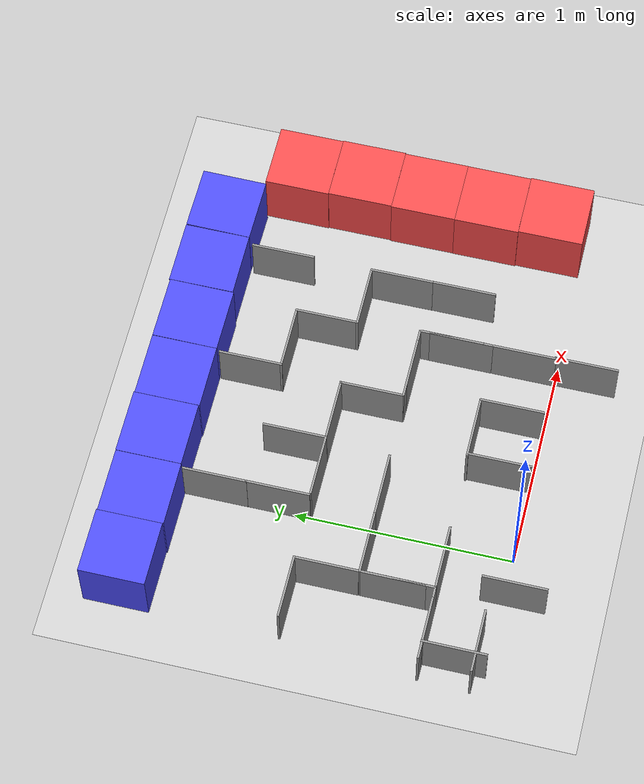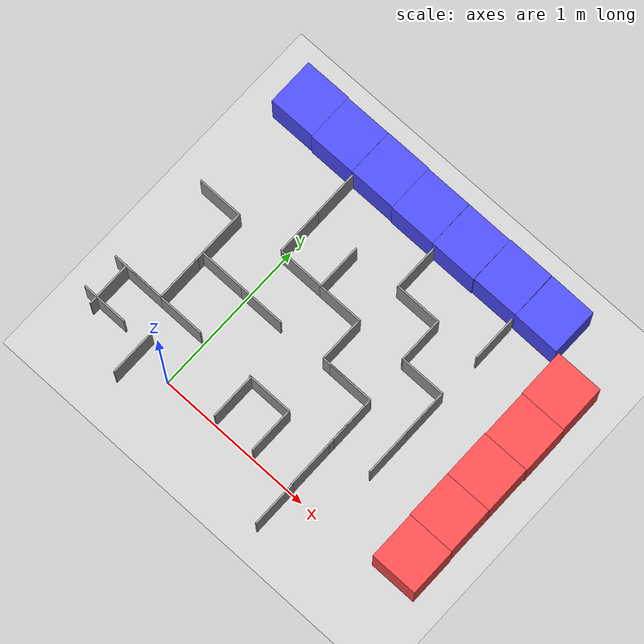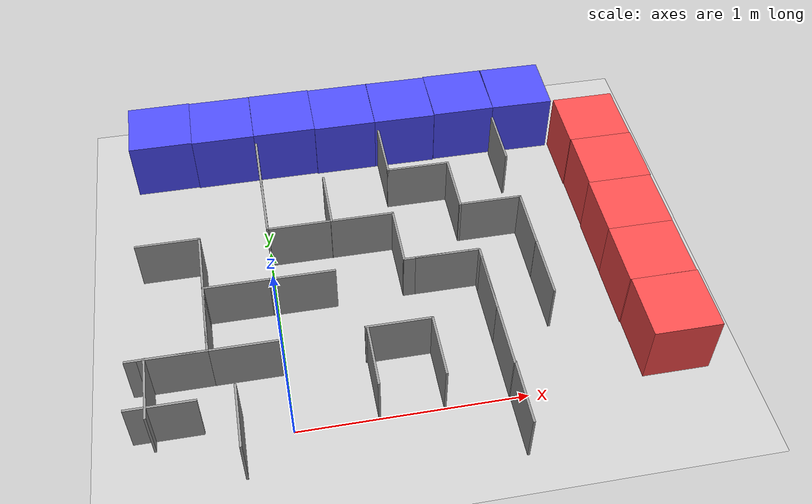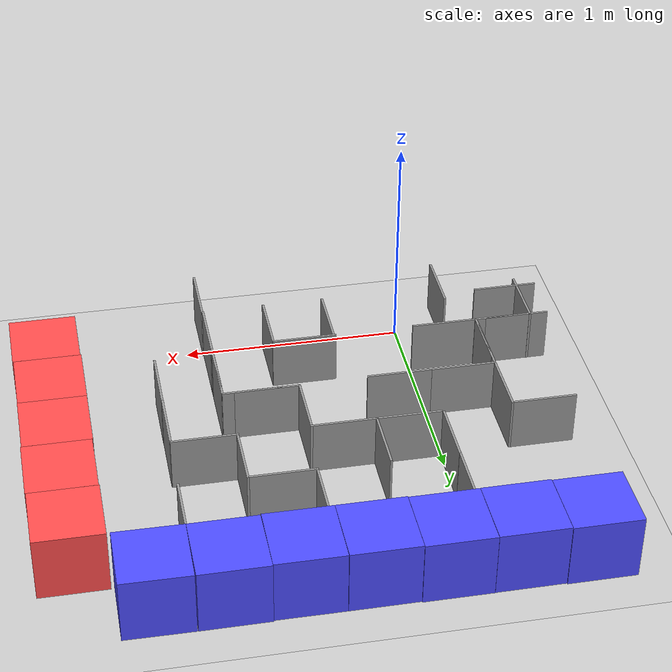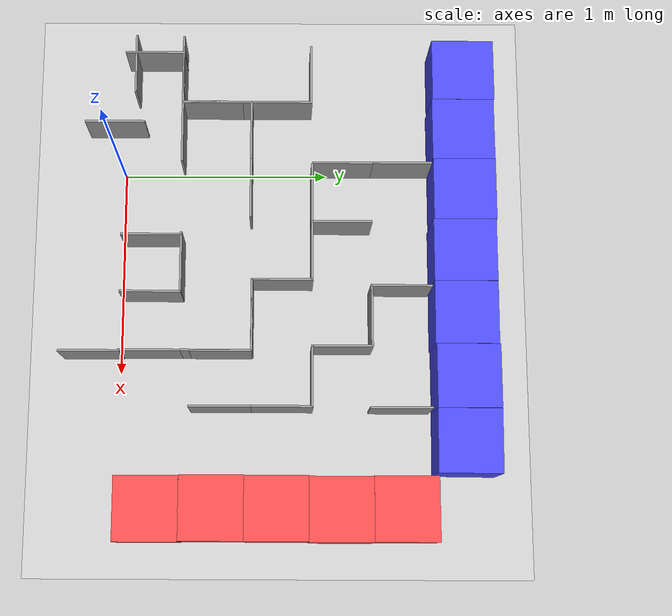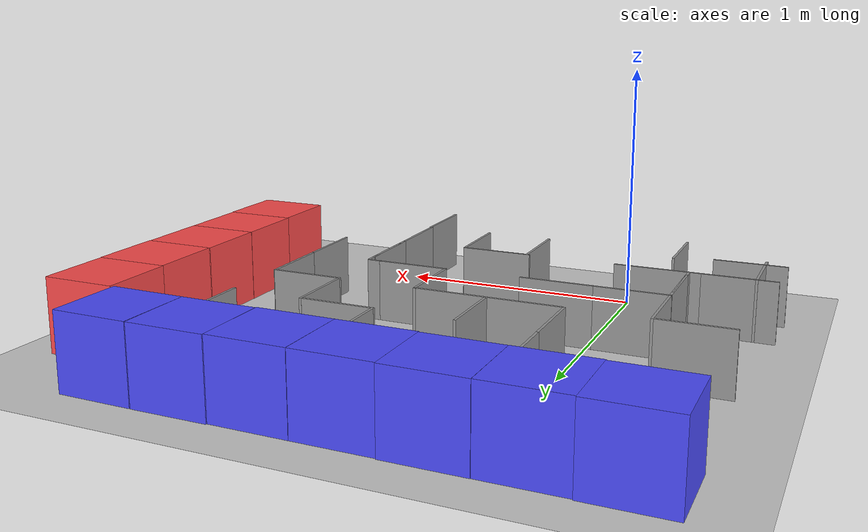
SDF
<sdf version="1.6">
 <world name="default">
  <model name="ground_plane">
   <static>1</static>
   <link name="link">
    <collision name="collision">
     <geometry><plane><normal>0 0 1</normal><size>100 100</size></plane></geometry>
     <surface><friction><ode><mu>100</mu><mu2>50</mu2></ode></friction></surface>
    </collision>
    <visual name="visual">
     <cast_shadows>0</cast_shadows>
     <geometry><plane><normal>0 0 1</normal><size>100 100</size></plane></geometry>
     <material>
      <script><uri>file://media/materials/scripts/gazebo.material</uri><name>Gazebo/Grey</name></script>
     </material>
    </visual>
   </link>
  </model>
  <model name="Box_Red">
   <link name="link_0">
    <inertial>
     <mass>1</mass>
     <inertia>
      <ixx>0.166667</ixx>
      <ixy>0</ixy>
      <ixz>0</ixz>
      <iyy>0.166667</iyy>
      <iyz>0</iyz>
      <izz>0.166667</izz>
     </inertia>
    </inertial>
    <visual name="visual">
     <geometry><box><size>0.3 0.3 0.3</size></box></geometry>
     <material>
      <lighting>1</lighting>
      <script><uri>file://media/materials/scripts/gazebo.material</uri><name>Gazebo/Grey</name></script>
      <ambient>1 0.3 0.3 1</ambient>
      <diffuse>0.7 0.7 0.7 1</diffuse>
      <specular>0.01 0.01 0.01 1</specular>
      <emissive>0 0 0 1</emissive>
      <shader type="vertex"><normal_map>__default__</normal_map></shader>
     </material>
    </visual>
    <collision name="collision">
     <geometry><box><size>0.3 0.3 0.3</size></box></geometry>
     <surface>
      <friction>
       <ode><mu>1</mu><mu2>1</mu2><fdir1>0 0 0</fdir1><slip1>0</slip1><slip2>0</slip2></ode>
       <torsional>
        <coefficient>1</coefficient>
        <patch_radius>0</patch_radius>
        <surface_radius>0</surface_radius>
        <use_patch_radius>1</use_patch_radius>
        <ode><slip>0</slip></ode>
       </torsional>
      </friction>
      <bounce><restitution_coefficient>0</restitution_coefficient><threshold>1e+06</threshold></bounce>
      <contact>
       <collide_without_contact>0</collide_without_contact>
       <collide_without_contact_bitmask>1</collide_without_contact_bitmask>
       <collide_bitmask>1</collide_bitmask>
       <ode>
        <soft_cfm>0</soft_cfm>
        <soft_erp>0.2</soft_erp>
        <kp>1e+13</kp>
        <kd>1</kd>
        <max_vel>0.01</max_vel>
        <min_depth>0</min_depth>
       </ode>
       <bullet>
        <split_impulse>1</split_impulse>
        <split_impulse_penetration_threshold>-0.01</split_impulse_penetration_threshold>
        <soft_cfm>0</soft_cfm>
        <soft_erp>0.2</soft_erp>
        <kp>1e+13</kp>
        <kd>1</kd>
       </bullet>
      </contact>
     </surface>
    </collision>
   </link>
   <static>0</static>
   <pose>1.65636 1.36 0.15 0 -0 -4.7e-05</pose>
  </model>
  <model name="Box_Red_clone">
   <link name="link_0">
    <inertial>
     <mass>1</mass>
     <inertia>
      <ixx>0.166667</ixx>
      <ixy>0</ixy>
      <ixz>0</ixz>
      <iyy>0.166667</iyy>
      <iyz>0</iyz>
      <izz>0.166667</izz>
     </inertia>
    </inertial>
    <visual name="visual">
     <geometry><box><size>0.3 0.3 0.3</size></box></geometry>
     <material>
      <lighting>1</lighting>
      <script><uri>file://media/materials/scripts/gazebo.material</uri><name>Gazebo/Grey</name></script>
      <ambient>1 0.3 0.3 1</ambient>
      <diffuse>0.7 0.7 0.7 1</diffuse>
      <specular>0.01 0.01 0.01 1</specular>
      <emissive>0 0 0 1</emissive>
      <shader type="vertex"><normal_map>__default__</normal_map></shader>
     </material>
    </visual>
    <collision name="collision">
     <geometry><box><size>0.3 0.3 0.3</size></box></geometry>
     <surface>
      <friction>
       <ode><mu>1</mu><mu2>1</mu2><fdir1>0 0 0</fdir1><slip1>0</slip1><slip2>0</slip2></ode>
       <torsional>
        <coefficient>1</coefficient>
        <patch_radius>0</patch_radius>
        <surface_radius>0</surface_radius>
        <use_patch_radius>1</use_patch_radius>
        <ode><slip>0</slip></ode>
       </torsional>
      </friction>
      <bounce><restitution_coefficient>0</restitution_coefficient><threshold>1e+06</threshold></bounce>
      <contact>
       <collide_without_contact>0</collide_without_contact>
       <collide_without_contact_bitmask>1</collide_without_contact_bitmask>
       <collide_bitmask>1</collide_bitmask>
       <ode>
        <soft_cfm>0</soft_cfm>
        <soft_erp>0.2</soft_erp>
        <kp>1e+13</kp>
        <kd>1</kd>
        <max_vel>0.01</max_vel>
        <min_depth>0</min_depth>
       </ode>
       <bullet>
        <split_impulse>1</split_impulse>
        <split_impulse_penetration_threshold>-0.01</split_impulse_penetration_threshold>
        <soft_cfm>0</soft_cfm>
        <soft_erp>0.2</soft_erp>
        <kp>1e+13</kp>
        <kd>1</kd>
       </bullet>
      </contact>
     </surface>
    </collision>
   </link>
   <static>0</static>
   <pose>1.6595 1.05998 0.15 0 -0 8.8e-05</pose>
  </model>
  <model name="Box_Red_clone_0">
   <link name="link_0">
    <inertial>
     <mass>1</mass>
     <inertia>
      <ixx>0.166667</ixx>
      <ixy>0</ixy>
      <ixz>0</ixz>
      <iyy>0.166667</iyy>
      <iyz>0</iyz>
      <izz>0.166667</izz>
     </inertia>
    </inertial>
    <visual name="visual">
     <geometry><box><size>0.3 0.3 0.3</size></box></geometry>
     <material>
      <lighting>1</lighting>
      <script><uri>file://media/materials/scripts/gazebo.material</uri><name>Gazebo/Grey</name></script>
      <ambient>1 0.3 0.3 1</ambient>
      <diffuse>0.7 0.7 0.7 1</diffuse>
      <specular>0.01 0.01 0.01 1</specular>
      <emissive>0 0 0 1</emissive>
      <shader type="vertex"><normal_map>__default__</normal_map></shader>
     </material>
    </visual>
    <collision name="collision">
     <geometry><box><size>0.3 0.3 0.3</size></box></geometry>
     <surface>
      <friction>
       <ode><mu>1</mu><mu2>1</mu2><fdir1>0 0 0</fdir1><slip1>0</slip1><slip2>0</slip2></ode>
       <torsional>
        <coefficient>1</coefficient>
        <patch_radius>0</patch_radius>
        <surface_radius>0</surface_radius>
        <use_patch_radius>1</use_patch_radius>
        <ode><slip>0</slip></ode>
       </torsional>
      </friction>
      <bounce><restitution_coefficient>0</restitution_coefficient><threshold>1e+06</threshold></bounce>
      <contact>
       <collide_without_contact>0</collide_without_contact>
       <collide_without_contact_bitmask>1</collide_without_contact_bitmask>
       <collide_bitmask>1</collide_bitmask>
       <ode>
        <soft_cfm>0</soft_cfm>
        <soft_erp>0.2</soft_erp>
        <kp>1e+13</kp>
        <kd>1</kd>
        <max_vel>0.01</max_vel>
        <min_depth>0</min_depth>
       </ode>
       <bullet>
        <split_impulse>1</split_impulse>
        <split_impulse_penetration_threshold>-0.01</split_impulse_penetration_threshold>
        <soft_cfm>0</soft_cfm>
        <soft_erp>0.2</soft_erp>
        <kp>1e+13</kp>
        <kd>1</kd>
       </bullet>
      </contact>
     </surface>
    </collision>
   </link>
   <static>0</static>
   <pose>1.65601 0.759963 0.15 0 -0 5.9e-05</pose>
  </model>
  <model name="Box_Red_clone_1">
   <link name="link_0">
    <inertial>
     <mass>1</mass>
     <inertia>
      <ixx>0.166667</ixx>
      <ixy>0</ixy>
      <ixz>0</ixz>
      <iyy>0.166667</iyy>
      <iyz>0</iyz>
      <izz>0.166667</izz>
     </inertia>
    </inertial>
    <visual name="visual">
     <geometry><box><size>0.3 0.3 0.3</size></box></geometry>
     <material>
      <lighting>1</lighting>
      <script><uri>file://media/materials/scripts/gazebo.material</uri><name>Gazebo/Grey</name></script>
      <ambient>1 0.3 0.3 1</ambient>
      <diffuse>0.7 0.7 0.7 1</diffuse>
      <specular>0.01 0.01 0.01 1</specular>
      <emissive>0 0 0 1</emissive>
      <shader type="vertex"><normal_map>__default__</normal_map></shader>
     </material>
    </visual>
    <collision name="collision">
     <geometry><box><size>0.3 0.3 0.3</size></box></geometry>
     <surface>
      <friction>
       <ode><mu>1</mu><mu2>1</mu2><fdir1>0 0 0</fdir1><slip1>0</slip1><slip2>0</slip2></ode>
       <torsional>
        <coefficient>1</coefficient>
        <patch_radius>0</patch_radius>
        <surface_radius>0</surface_radius>
        <use_patch_radius>1</use_patch_radius>
        <ode><slip>0</slip></ode>
       </torsional>
      </friction>
      <bounce><restitution_coefficient>0</restitution_coefficient><threshold>1e+06</threshold></bounce>
      <contact>
       <collide_without_contact>0</collide_without_contact>
       <collide_without_contact_bitmask>1</collide_without_contact_bitmask>
       <collide_bitmask>1</collide_bitmask>
       <ode>
        <soft_cfm>0</soft_cfm>
        <soft_erp>0.2</soft_erp>
        <kp>1e+13</kp>
        <kd>1</kd>
        <max_vel>0.01</max_vel>
        <min_depth>0</min_depth>
       </ode>
       <bullet>
        <split_impulse>1</split_impulse>
        <split_impulse_penetration_threshold>-0.01</split_impulse_penetration_threshold>
        <soft_cfm>0</soft_cfm>
        <soft_erp>0.2</soft_erp>
        <kp>1e+13</kp>
        <kd>1</kd>
       </bullet>
      </contact>
     </surface>
    </collision>
   </link>
   <static>0</static>
   <pose>1.65528 0.459952 0.15 0 -0 0.0001</pose>
  </model>
  <model name="Box_Red_clone_2">
   <link name="link_0">
    <inertial>
     <mass>1</mass>
     <inertia>
      <ixx>0.166667</ixx>
      <ixy>0</ixy>
      <ixz>0</ixz>
      <iyy>0.166667</iyy>
      <iyz>0</iyz>
      <izz>0.166667</izz>
     </inertia>
    </inertial>
    <visual name="visual">
     <geometry><box><size>0.3 0.3 0.3</size></box></geometry>
     <material>
      <lighting>1</lighting>
      <script><uri>file://media/materials/scripts/gazebo.material</uri><name>Gazebo/Grey</name></script>
      <ambient>1 0.3 0.3 1</ambient>
      <diffuse>0.7 0.7 0.7 1</diffuse>
      <specular>0.01 0.01 0.01 1</specular>
      <emissive>0 0 0 1</emissive>
      <shader type="vertex"><normal_map>__default__</normal_map></shader>
     </material>
    </visual>
    <collision name="collision">
     <geometry><box><size>0.3 0.3 0.3</size></box></geometry>
     <surface>
      <friction>
       <ode><mu>1</mu><mu2>1</mu2><fdir1>0 0 0</fdir1><slip1>0</slip1><slip2>0</slip2></ode>
       <torsional>
        <coefficient>1</coefficient>
        <patch_radius>0</patch_radius>
        <surface_radius>0</surface_radius>
        <use_patch_radius>1</use_patch_radius>
        <ode><slip>0</slip></ode>
       </torsional>
      </friction>
      <bounce><restitution_coefficient>0</restitution_coefficient><threshold>1e+06</threshold></bounce>
      <contact>
       <collide_without_contact>0</collide_without_contact>
       <collide_without_contact_bitmask>1</collide_without_contact_bitmask>
       <collide_bitmask>1</collide_bitmask>
       <ode>
        <soft_cfm>0</soft_cfm>
        <soft_erp>0.2</soft_erp>
        <kp>1e+13</kp>
        <kd>1</kd>
        <max_vel>0.01</max_vel>
        <min_depth>0</min_depth>
       </ode>
       <bullet>
        <split_impulse>1</split_impulse>
        <split_impulse_penetration_threshold>-0.01</split_impulse_penetration_threshold>
        <soft_cfm>0</soft_cfm>
        <soft_erp>0.2</soft_erp>
        <kp>1e+13</kp>
        <kd>1</kd>
       </bullet>
      </contact>
     </surface>
    </collision>
   </link>
   <static>0</static>
   <pose>1.65948 0.159881 0.15 0 -0 0.000522</pose>
  </model>
  <model name="Box_Blue">
   <link name="link_0">
    <inertial>
     <mass>1</mass>
     <inertia>
      <ixx>0.166667</ixx>
      <ixy>0</ixy>
      <ixz>0</ixz>
      <iyy>0.166667</iyy>
      <iyz>0</iyz>
      <izz>0.166667</izz>
     </inertia>
    </inertial>
    <visual name="visual">
     <geometry><box><size>0.3 0.3 0.3</size></box></geometry>
     <material>
      <lighting>1</lighting>
      <script><uri>file://media/materials/scripts/gazebo.material</uri><name>Gazebo/Grey</name></script>
      <ambient>0.3 0.3 1 1</ambient>
      <diffuse>0.7 0.7 0.7 1</diffuse>
      <specular>0.01 0.01 0.01 1</specular>
      <emissive>0 0 0 1</emissive>
      <shader type="vertex"><normal_map>__default__</normal_map></shader>
     </material>
    </visual>
    <collision name="collision">
     <geometry><box><size>0.3 0.3 0.3</size></box></geometry>
     <surface>
      <friction>
       <ode><mu>1</mu><mu2>1</mu2><fdir1>0 0 0</fdir1><slip1>0</slip1><slip2>0</slip2></ode>
       <torsional>
        <coefficient>1</coefficient>
        <patch_radius>0</patch_radius>
        <surface_radius>0</surface_radius>
        <use_patch_radius>1</use_patch_radius>
        <ode><slip>0</slip></ode>
       </torsional>
      </friction>
      <bounce><restitution_coefficient>0</restitution_coefficient><threshold>1e+06</threshold></bounce>
      <contact>
       <collide_without_contact>0</collide_without_contact>
       <collide_without_contact_bitmask>1</collide_without_contact_bitmask>
       <collide_bitmask>1</collide_bitmask>
       <ode>
        <soft_cfm>0</soft_cfm>
        <soft_erp>0.2</soft_erp>
        <kp>1e+13</kp>
        <kd>1</kd>
        <max_vel>0.01</max_vel>
        <min_depth>0</min_depth>
       </ode>
       <bullet>
        <split_impulse>1</split_impulse>
        <split_impulse_penetration_threshold>-0.01</split_impulse_penetration_threshold>
        <soft_cfm>0</soft_cfm>
        <soft_erp>0.2</soft_erp>
        <kp>1e+13</kp>
        <kd>1</kd>
       </bullet>
      </contact>
     </surface>
    </collision>
   </link>
   <static>0</static>
   <pose>1.34428 1.65663 0.15 0 -0 -0.010737</pose>
  </model>
  <model name="Box_Blue_clone">
   <link name="link_0">
    <inertial>
     <mass>1</mass>
     <inertia>
      <ixx>0.166667</ixx>
      <ixy>0</ixy>
      <ixz>0</ixz>
      <iyy>0.166667</iyy>
      <iyz>0</iyz>
      <izz>0.166667</izz>
     </inertia>
    </inertial>
    <visual name="visual">
     <geometry><box><size>0.3 0.3 0.3</size></box></geometry>
     <material>
      <lighting>1</lighting>
      <script><uri>file://media/materials/scripts/gazebo.material</uri><name>Gazebo/Grey</name></script>
      <ambient>0.3 0.3 1 1</ambient>
      <diffuse>0.7 0.7 0.7 1</diffuse>
      <specular>0.01 0.01 0.01 1</specular>
      <emissive>0 0 0 1</emissive>
      <shader type="vertex"><normal_map>__default__</normal_map></shader>
     </material>
    </visual>
    <collision name="collision">
     <geometry><box><size>0.3 0.3 0.3</size></box></geometry>
     <surface>
      <friction>
       <ode><mu>1</mu><mu2>1</mu2><fdir1>0 0 0</fdir1><slip1>0</slip1><slip2>0</slip2></ode>
       <torsional>
        <coefficient>1</coefficient>
        <patch_radius>0</patch_radius>
        <surface_radius>0</surface_radius>
        <use_patch_radius>1</use_patch_radius>
        <ode><slip>0</slip></ode>
       </torsional>
      </friction>
      <bounce><restitution_coefficient>0</restitution_coefficient><threshold>1e+06</threshold></bounce>
      <contact>
       <collide_without_contact>0</collide_without_contact>
       <collide_without_contact_bitmask>1</collide_without_contact_bitmask>
       <collide_bitmask>1</collide_bitmask>
       <ode>
        <soft_cfm>0</soft_cfm>
        <soft_erp>0.2</soft_erp>
        <kp>1e+13</kp>
        <kd>1</kd>
        <max_vel>0.01</max_vel>
        <min_depth>0</min_depth>
       </ode>
       <bullet>
        <split_impulse>1</split_impulse>
        <split_impulse_penetration_threshold>-0.01</split_impulse_penetration_threshold>
        <soft_cfm>0</soft_cfm>
        <soft_erp>0.2</soft_erp>
        <kp>1e+13</kp>
        <kd>1</kd>
       </bullet>
      </contact>
     </surface>
    </collision>
   </link>
   <static>0</static>
   <pose>1.04234 1.65844 0.15 0 -0 0.000693</pose>
  </model>
  <model name="Box_Blue_clone_0">
   <link name="link_0">
    <inertial>
     <mass>1</mass>
     <inertia>
      <ixx>0.166667</ixx>
      <ixy>0</ixy>
      <ixz>0</ixz>
      <iyy>0.166667</iyy>
      <iyz>0</iyz>
      <izz>0.166667</izz>
     </inertia>
    </inertial>
    <visual name="visual">
     <geometry><box><size>0.3 0.3 0.3</size></box></geometry>
     <material>
      <lighting>1</lighting>
      <script><uri>file://media/materials/scripts/gazebo.material</uri><name>Gazebo/Grey</name></script>
      <ambient>0.3 0.3 1 1</ambient>
      <diffuse>0.7 0.7 0.7 1</diffuse>
      <specular>0.01 0.01 0.01 1</specular>
      <emissive>0 0 0 1</emissive>
      <shader type="vertex"><normal_map>__default__</normal_map></shader>
     </material>
    </visual>
    <collision name="collision">
     <geometry><box><size>0.3 0.3 0.3</size></box></geometry>
     <surface>
      <friction>
       <ode><mu>1</mu><mu2>1</mu2><fdir1>0 0 0</fdir1><slip1>0</slip1><slip2>0</slip2></ode>
       <torsional>
        <coefficient>1</coefficient>
        <patch_radius>0</patch_radius>
        <surface_radius>0</surface_radius>
        <use_patch_radius>1</use_patch_radius>
        <ode><slip>0</slip></ode>
       </torsional>
      </friction>
      <bounce><restitution_coefficient>0</restitution_coefficient><threshold>1e+06</threshold></bounce>
      <contact>
       <collide_without_contact>0</collide_without_contact>
       <collide_without_contact_bitmask>1</collide_without_contact_bitmask>
       <collide_bitmask>1</collide_bitmask>
       <ode>
        <soft_cfm>0</soft_cfm>
        <soft_erp>0.2</soft_erp>
        <kp>1e+13</kp>
        <kd>1</kd>
        <max_vel>0.01</max_vel>
        <min_depth>0</min_depth>
       </ode>
       <bullet>
        <split_impulse>1</split_impulse>
        <split_impulse_penetration_threshold>-0.01</split_impulse_penetration_threshold>
        <soft_cfm>0</soft_cfm>
        <soft_erp>0.2</soft_erp>
        <kp>1e+13</kp>
        <kd>1</kd>
       </bullet>
      </contact>
     </surface>
    </collision>
   </link>
   <static>0</static>
   <pose>0.741491 1.6543 0.15 0 -0 -0.004985</pose>
  </model>
  <model name="Box_Blue_clone_1">
   <link name="link_0">
    <inertial>
     <mass>1</mass>
     <inertia>
      <ixx>0.166667</ixx>
      <ixy>0</ixy>
      <ixz>0</ixz>
      <iyy>0.166667</iyy>
      <iyz>0</iyz>
      <izz>0.166667</izz>
     </inertia>
    </inertial>
    <visual name="visual">
     <geometry><box><size>0.3 0.3 0.3</size></box></geometry>
     <material>
      <lighting>1</lighting>
      <script><uri>file://media/materials/scripts/gazebo.material</uri><name>Gazebo/Grey</name></script>
      <ambient>0.3 0.3 1 1</ambient>
      <diffuse>0.7 0.7 0.7 1</diffuse>
      <specular>0.01 0.01 0.01 1</specular>
      <emissive>0 0 0 1</emissive>
      <shader type="vertex"><normal_map>__default__</normal_map></shader>
     </material>
    </visual>
    <collision name="collision">
     <geometry><box><size>0.3 0.3 0.3</size></box></geometry>
     <surface>
      <friction>
       <ode><mu>1</mu><mu2>1</mu2><fdir1>0 0 0</fdir1><slip1>0</slip1><slip2>0</slip2></ode>
       <torsional>
        <coefficient>1</coefficient>
        <patch_radius>0</patch_radius>
        <surface_radius>0</surface_radius>
        <use_patch_radius>1</use_patch_radius>
        <ode><slip>0</slip></ode>
       </torsional>
      </friction>
      <bounce><restitution_coefficient>0</restitution_coefficient><threshold>1e+06</threshold></bounce>
      <contact>
       <collide_without_contact>0</collide_without_contact>
       <collide_without_contact_bitmask>1</collide_without_contact_bitmask>
       <collide_bitmask>1</collide_bitmask>
       <ode>
        <soft_cfm>0</soft_cfm>
        <soft_erp>0.2</soft_erp>
        <kp>1e+13</kp>
        <kd>1</kd>
        <max_vel>0.01</max_vel>
        <min_depth>0</min_depth>
       </ode>
       <bullet>
        <split_impulse>1</split_impulse>
        <split_impulse_penetration_threshold>-0.01</split_impulse_penetration_threshold>
        <soft_cfm>0</soft_cfm>
        <soft_erp>0.2</soft_erp>
        <kp>1e+13</kp>
        <kd>1</kd>
       </bullet>
      </contact>
     </surface>
    </collision>
   </link>
   <static>0</static>
   <pose>0.440771 1.6551 0.15 0 -0 -0.000185</pose>
  </model>
  <model name="Box_Blue_clone_2">
   <link name="link_0">
    <inertial>
     <mass>1</mass>
     <inertia>
      <ixx>0.166667</ixx>
      <ixy>0</ixy>
      <ixz>0</ixz>
      <iyy>0.166667</iyy>
      <iyz>0</iyz>
      <izz>0.166667</izz>
     </inertia>
    </inertial>
    <visual name="visual">
     <geometry><box><size>0.3 0.3 0.3</size></box></geometry>
     <material>
      <lighting>1</lighting>
      <script><uri>file://media/materials/scripts/gazebo.material</uri><name>Gazebo/Grey</name></script>
      <ambient>0.3 0.3 1 1</ambient>
      <diffuse>0.7 0.7 0.7 1</diffuse>
      <specular>0.01 0.01 0.01 1</specular>
      <emissive>0 0 0 1</emissive>
      <shader type="vertex"><normal_map>__default__</normal_map></shader>
     </material>
    </visual>
    <collision name="collision">
     <geometry><box><size>0.3 0.3 0.3</size></box></geometry>
     <surface>
      <friction>
       <ode><mu>1</mu><mu2>1</mu2><fdir1>0 0 0</fdir1><slip1>0</slip1><slip2>0</slip2></ode>
       <torsional>
        <coefficient>1</coefficient>
        <patch_radius>0</patch_radius>
        <surface_radius>0</surface_radius>
        <use_patch_radius>1</use_patch_radius>
        <ode><slip>0</slip></ode>
       </torsional>
      </friction>
      <bounce><restitution_coefficient>0</restitution_coefficient><threshold>1e+06</threshold></bounce>
      <contact>
       <collide_without_contact>0</collide_without_contact>
       <collide_without_contact_bitmask>1</collide_without_contact_bitmask>
       <collide_bitmask>1</collide_bitmask>
       <ode>
        <soft_cfm>0</soft_cfm>
        <soft_erp>0.2</soft_erp>
        <kp>1e+13</kp>
        <kd>1</kd>
        <max_vel>0.01</max_vel>
        <min_depth>0</min_depth>
       </ode>
       <bullet>
        <split_impulse>1</split_impulse>
        <split_impulse_penetration_threshold>-0.01</split_impulse_penetration_threshold>
        <soft_cfm>0</soft_cfm>
        <soft_erp>0.2</soft_erp>
        <kp>1e+13</kp>
        <kd>1</kd>
       </bullet>
      </contact>
     </surface>
    </collision>
   </link>
   <static>0</static>
   <pose>0.140708 1.65944 0.15 -0 -0 -0.000601</pose>
  </model>
  <model name="Box_Blue_clone_3">
   <link name="link_0">
    <inertial>
     <mass>1</mass>
     <inertia>
      <ixx>0.166667</ixx>
      <ixy>0</ixy>
      <ixz>0</ixz>
      <iyy>0.166667</iyy>
      <iyz>0</iyz>
      <izz>0.166667</izz>
     </inertia>
    </inertial>
    <visual name="visual">
     <geometry><box><size>0.3 0.3 0.3</size></box></geometry>
     <material>
      <lighting>1</lighting>
      <script><uri>file://media/materials/scripts/gazebo.material</uri><name>Gazebo/Grey</name></script>
      <ambient>0.3 0.3 1 1</ambient>
      <diffuse>0.7 0.7 0.7 1</diffuse>
      <specular>0.01 0.01 0.01 1</specular>
      <emissive>0 0 0 1</emissive>
      <shader type="vertex"><normal_map>__default__</normal_map></shader>
     </material>
    </visual>
    <collision name="collision">
     <geometry><box><size>0.3 0.3 0.3</size></box></geometry>
     <surface>
      <friction>
       <ode><mu>1</mu><mu2>1</mu2><fdir1>0 0 0</fdir1><slip1>0</slip1><slip2>0</slip2></ode>
       <torsional>
        <coefficient>1</coefficient>
        <patch_radius>0</patch_radius>
        <surface_radius>0</surface_radius>
        <use_patch_radius>1</use_patch_radius>
        <ode><slip>0</slip></ode>
       </torsional>
      </friction>
      <bounce><restitution_coefficient>0</restitution_coefficient><threshold>1e+06</threshold></bounce>
      <contact>
       <collide_without_contact>0</collide_without_contact>
       <collide_without_contact_bitmask>1</collide_without_contact_bitmask>
       <collide_bitmask>1</collide_bitmask>
       <ode>
        <soft_cfm>0</soft_cfm>
        <soft_erp>0.2</soft_erp>
        <kp>1e+13</kp>
        <kd>1</kd>
        <max_vel>0.01</max_vel>
        <min_depth>0</min_depth>
       </ode>
       <bullet>
        <split_impulse>1</split_impulse>
        <split_impulse_penetration_threshold>-0.01</split_impulse_penetration_threshold>
        <soft_cfm>0</soft_cfm>
        <soft_erp>0.2</soft_erp>
        <kp>1e+13</kp>
        <kd>1</kd>
       </bullet>
      </contact>
     </surface>
    </collision>
   </link>
   <static>0</static>
   <pose>-0.15976 1.65815 0.15 0 -0 0.001741</pose>
  </model>
  <model name="Box_Blue_clone_4">
   <link name="link_0">
    <inertial>
     <mass>1</mass>
     <inertia>
      <ixx>0.166667</ixx>
      <ixy>0</ixy>
      <ixz>0</ixz>
      <iyy>0.166667</iyy>
      <iyz>0</iyz>
      <izz>0.166667</izz>
     </inertia>
    </inertial>
    <visual name="visual">
     <geometry><box><size>0.3 0.3 0.3</size></box></geometry>
     <material>
      <lighting>1</lighting>
      <script><uri>file://media/materials/scripts/gazebo.material</uri><name>Gazebo/Grey</name></script>
      <ambient>0.3 0.3 1 1</ambient>
      <diffuse>0.7 0.7 0.7 1</diffuse>
      <specular>0.01 0.01 0.01 1</specular>
      <emissive>0 0 0 1</emissive>
      <shader type="vertex"><normal_map>__default__</normal_map></shader>
     </material>
    </visual>
    <collision name="collision">
     <geometry><box><size>0.3 0.3 0.3</size></box></geometry>
     <surface>
      <friction>
       <ode><mu>1</mu><mu2>1</mu2><fdir1>0 0 0</fdir1><slip1>0</slip1><slip2>0</slip2></ode>
       <torsional>
        <coefficient>1</coefficient>
        <patch_radius>0</patch_radius>
        <surface_radius>0</surface_radius>
        <use_patch_radius>1</use_patch_radius>
        <ode><slip>0</slip></ode>
       </torsional>
      </friction>
      <bounce><restitution_coefficient>0</restitution_coefficient><threshold>1e+06</threshold></bounce>
      <contact>
       <collide_without_contact>0</collide_without_contact>
       <collide_without_contact_bitmask>1</collide_without_contact_bitmask>
       <collide_bitmask>1</collide_bitmask>
       <ode>
        <soft_cfm>0</soft_cfm>
        <soft_erp>0.2</soft_erp>
        <kp>1e+13</kp>
        <kd>1</kd>
        <max_vel>0.01</max_vel>
        <min_depth>0</min_depth>
       </ode>
       <bullet>
        <split_impulse>1</split_impulse>
        <split_impulse_penetration_threshold>-0.01</split_impulse_penetration_threshold>
        <soft_cfm>0</soft_cfm>
        <soft_erp>0.2</soft_erp>
        <kp>1e+13</kp>
        <kd>1</kd>
       </bullet>
      </contact>
     </surface>
    </collision>
   </link>
   <static>0</static>
   <pose>-0.45982 1.66243 0.15 0 -0 0.001525</pose>
  </model>
  <model name="Maze_I_H_clone">
   <pose>1.18792 1.34673 0 0 -0 0</pose>
   <link name="Wall_0">
    <collision name="Wall_0_Collision">
     <geometry><box><size>0.294 0.01 0.25</size></box></geometry>
     <pose>0 0 0.125 0 -0 0</pose>
    </collision>
    <visual name="Wall_0_Visual">
     <pose>0 0 0.125 0 -0 0</pose>
     <geometry><box><size>0.294 0.01 0.25</size></box></geometry>
     <material>
      <script><uri>file://media/materials/scripts/gazebo.material</uri><name>Gazebo/Grey</name></script>
      <ambient>1 1 1 1</ambient>
     </material>
     <meta><layer>0</layer></meta>
    </visual>
    <pose>0 0 0 0 -0 1.5708</pose>
   </link>
   <static>1</static>
  </model>
  <model name="Maze_L_RB_clone">
   <pose>0.748164 1.35333 0 0 -0 0</pose>
   <link name="Wall_0">
    <collision name="Wall_0_Collision">
     <geometry><box><size>0.294 0.01 0.25</size></box></geometry>
     <pose>0 0 0.125 0 -0 0</pose>
    </collision>
    <visual name="Wall_0_Visual">
     <pose>0 0 0.125 0 -0 0</pose>
     <geometry><box><size>0.294 0.01 0.25</size></box></geometry>
     <material>
      <script><uri>file://media/materials/scripts/gazebo.material</uri><name>Gazebo/Grey</name></script>
      <ambient>1 1 1 1</ambient>
     </material>
     <meta><layer>0</layer></meta>
    </visual>
    <pose>0 -0.142 0 0 -0 0</pose>
   </link>
   <link name="Wall_2">
    <collision name="Wall_2_Collision">
     <geometry><box><size>0.294 0.01 0.25</size></box></geometry>
     <pose>0 0 0.125 0 -0 0</pose>
    </collision>
    <visual name="Wall_2_Visual">
     <pose>0 0 0.125 0 -0 0</pose>
     <geometry><box><size>0.294 0.01 0.25</size></box></geometry>
     <material>
      <script><uri>file://media/materials/scripts/gazebo.material</uri><name>Gazebo/Grey</name></script>
      <ambient>1 1 1 1</ambient>
     </material>
     <meta><layer>0</layer></meta>
    </visual>
    <pose>-0.142 0 0 0 -0 1.5708</pose>
   </link>
   <static>1</static>
  </model>
  <model name="Maze_L_RB_clone_0">
   <pose>1.03964 1.06941 0 0 -0 0</pose>
   <link name="Wall_0">
    <collision name="Wall_0_Collision">
     <geometry><box><size>0.294 0.01 0.25</size></box></geometry>
     <pose>0 0 0.125 0 -0 0</pose>
    </collision>
    <visual name="Wall_0_Visual">
     <pose>0 0 0.125 0 -0 0</pose>
     <geometry><box><size>0.294 0.01 0.25</size></box></geometry>
     <material>
      <script><uri>file://media/materials/scripts/gazebo.material</uri><name>Gazebo/Grey</name></script>
      <ambient>1 1 1 1</ambient>
     </material>
     <meta><layer>0</layer></meta>
    </visual>
    <pose>0 -0.142 0 0 -0 0</pose>
   </link>
   <link name="Wall_2">
    <collision name="Wall_2_Collision">
     <geometry><box><size>0.294 0.01 0.25</size></box></geometry>
     <pose>0 0 0.125 0 -0 0</pose>
    </collision>
    <visual name="Wall_2_Visual">
     <pose>0 0 0.125 0 -0 0</pose>
     <geometry><box><size>0.294 0.01 0.25</size></box></geometry>
     <material>
      <script><uri>file://media/materials/scripts/gazebo.material</uri><name>Gazebo/Grey</name></script>
      <ambient>1 1 1 1</ambient>
     </material>
     <meta><layer>0</layer></meta>
    </visual>
    <pose>-0.142 0 0 0 -0 1.5708</pose>
   </link>
   <static>1</static>
  </model>
  <model name="Maze_I_H_clone_0">
   <pose>1.18406 0.784556 0 0 -0 0</pose>
   <link name="Wall_0">
    <collision name="Wall_0_Collision">
     <geometry><box><size>0.294 0.01 0.25</size></box></geometry>
     <pose>0 0 0.125 0 -0 0</pose>
    </collision>
    <visual name="Wall_0_Visual">
     <pose>0 0 0.125 0 -0 0</pose>
     <geometry><box><size>0.294 0.01 0.25</size></box></geometry>
     <material>
      <script><uri>file://media/materials/scripts/gazebo.material</uri><name>Gazebo/Grey</name></script>
      <ambient>1 1 1 1</ambient>
     </material>
     <meta><layer>0</layer></meta>
    </visual>
    <pose>0 0 0 0 -0 1.5708</pose>
   </link>
   <static>1</static>
  </model>
  <model name="Maze_I_H_clone_1">
   <pose>1.18478 0.490963 0 0 -0 0</pose>
   <link name="Wall_0">
    <collision name="Wall_0_Collision">
     <geometry><box><size>0.294 0.01 0.25</size></box></geometry>
     <pose>0 0 0.125 0 -0 0</pose>
    </collision>
    <visual name="Wall_0_Visual">
     <pose>0 0 0.125 0 -0 0</pose>
     <geometry><box><size>0.294 0.01 0.25</size></box></geometry>
     <material>
      <script><uri>file://media/materials/scripts/gazebo.material</uri><name>Gazebo/Grey</name></script>
      <ambient>1 1 1 1</ambient>
     </material>
     <meta><layer>0</layer></meta>
    </visual>
    <pose>0 0 0 0 -0 1.5708</pose>
   </link>
   <static>1</static>
  </model>
  <model name="Maze_I_H_clone_2">
   <pose>0.920533 0.155119 0 0 -0 0</pose>
   <link name="Wall_0">
    <collision name="Wall_0_Collision">
     <geometry><box><size>0.294 0.01 0.25</size></box></geometry>
     <pose>0 0 0.125 0 -0 0</pose>
    </collision>
    <visual name="Wall_0_Visual">
     <pose>0 0 0.125 0 -0 0</pose>
     <geometry><box><size>0.294 0.01 0.25</size></box></geometry>
     <material>
      <script><uri>file://media/materials/scripts/gazebo.material</uri><name>Gazebo/Grey</name></script>
      <ambient>1 1 1 1</ambient>
     </material>
     <meta><layer>0</layer></meta>
    </visual>
    <pose>0 0 0 0 -0 1.5708</pose>
   </link>
   <static>1</static>
  </model>
  <model name="Maze_I_H_clone_3">
   <pose>0.920216 0.446457 0 0 -0 0</pose>
   <link name="Wall_0">
    <collision name="Wall_0_Collision">
     <geometry><box><size>0.294 0.01 0.25</size></box></geometry>
     <pose>0 0 0.125 0 -0 0</pose>
    </collision>
    <visual name="Wall_0_Visual">
     <pose>0 0 0.125 0 -0 0</pose>
     <geometry><box><size>0.294 0.01 0.25</size></box></geometry>
     <material>
      <script><uri>file://media/materials/scripts/gazebo.material</uri><name>Gazebo/Grey</name></script>
      <ambient>1 1 1 1</ambient>
     </material>
     <meta><layer>0</layer></meta>
    </visual>
    <pose>0 0 0 0 -0 1.5708</pose>
   </link>
   <static>1</static>
  </model>
  <model name="Maze_I_H_clone_4">
   <pose>0.637555 0.152365 0 0 -0 0</pose>
   <link name="Wall_0">
    <collision name="Wall_0_Collision">
     <geometry><box><size>0.294 0.01 0.25</size></box></geometry>
     <pose>0 0 0.125 0 -0 0</pose>
    </collision>
    <visual name="Wall_0_Visual">
     <pose>0 0 0.125 0 -0 0</pose>
     <geometry><box><size>0.294 0.01 0.25</size></box></geometry>
     <material>
      <script><uri>file://media/materials/scripts/gazebo.material</uri><name>Gazebo/Grey</name></script>
      <ambient>1 1 1 1</ambient>
     </material>
     <meta><layer>0</layer></meta>
    </visual>
    <pose>0 0 0 0 -0 1.5708</pose>
   </link>
   <static>1</static>
  </model>
  <model name="Maze_L_RU_clone_1">
   <pose>0.150754 1.0698 0 0 -0 0</pose>
   <link name="Wall_11">
    <collision name="Wall_11_Collision">
     <geometry><box><size>0.294 0.01 0.25</size></box></geometry>
     <pose>0 0 0.125 0 -0 0</pose>
    </collision>
    <visual name="Wall_11_Visual">
     <pose>0 0 0.125 0 -0 0</pose>
     <geometry><box><size>0.294 0.01 0.25</size></box></geometry>
     <material>
      <script><uri>file://media/materials/scripts/gazebo.material</uri><name>Gazebo/Grey</name></script>
      <ambient>1 1 1 1</ambient>
     </material>
     <meta><layer>0</layer></meta>
    </visual>
    <pose>0 -0.142 0 0 -0 0</pose>
   </link>
   <link name="Wall_12">
    <collision name="Wall_12_Collision">
     <geometry><box><size>0.294 0.01 0.25</size></box></geometry>
     <pose>0 0 0.125 0 -0 0</pose>
    </collision>
    <visual name="Wall_12_Visual">
     <pose>0 0 0.125 0 -0 0</pose>
     <geometry><box><size>0.294 0.01 0.25</size></box></geometry>
     <material>
      <script><uri>file://media/materials/scripts/gazebo.material</uri><name>Gazebo/Grey</name></script>
      <ambient>1 1 1 1</ambient>
     </material>
     <meta><layer>0</layer></meta>
    </visual>
    <pose>0.142 0 0 0 -0 1.5708</pose>
   </link>
   <static>1</static>
  </model>
  <model name="Maze_L_LU_clone">
   <pose>0.435895 0.785348 0 0 -0 0</pose>
   <link name="Wall_0">
    <collision name="Wall_0_Collision">
     <geometry><box><size>0.294 0.01 0.25</size></box></geometry>
     <pose>0 0 0.125 0 -0 0</pose>
    </collision>
    <visual name="Wall_0_Visual">
     <pose>0 0 0.125 0 -0 0</pose>
     <geometry><box><size>0.294 0.01 0.25</size></box></geometry>
     <material>
      <script><uri>file://media/materials/scripts/gazebo.material</uri><name>Gazebo/Grey</name></script>
      <ambient>1 1 1 1</ambient>
     </material>
     <meta><layer>0</layer></meta>
    </visual>
    <pose>0 0.142 0 0 -0 3.14159</pose>
   </link>
   <link name="Wall_2">
    <collision name="Wall_2_Collision">
     <geometry><box><size>0.294 0.01 0.25</size></box></geometry>
     <pose>0 0 0.125 0 -0 0</pose>
    </collision>
    <visual name="Wall_2_Visual">
     <pose>0 0 0.125 0 -0 0</pose>
     <geometry><box><size>0.294 0.01 0.25</size></box></geometry>
     <material>
      <script><uri>file://media/materials/scripts/gazebo.material</uri><name>Gazebo/Grey</name></script>
      <ambient>1 1 1 1</ambient>
     </material>
     <meta><layer>0</layer></meta>
    </visual>
    <pose>0.142 0 0 0 0 -1.5708</pose>
   </link>
   <static>1</static>
  </model>
  <model name="Maze_L_LU_clone_1">
   <pose>-0.452385 0.781514 0 0 -0 0</pose>
   <link name="Wall_0">
    <collision name="Wall_0_Collision">
     <geometry><box><size>0.294 0.01 0.25</size></box></geometry>
     <pose>0 0 0.125 0 -0 0</pose>
    </collision>
    <visual name="Wall_0_Visual">
     <pose>0 0 0.125 0 -0 0</pose>
     <geometry><box><size>0.294 0.01 0.25</size></box></geometry>
     <material>
      <script><uri>file://media/materials/scripts/gazebo.material</uri><name>Gazebo/Grey</name></script>
      <ambient>1 1 1 1</ambient>
     </material>
     <meta><layer>0</layer></meta>
    </visual>
    <pose>0 0.142 0 0 -0 3.14159</pose>
   </link>
   <link name="Wall_2">
    <collision name="Wall_2_Collision">
     <geometry><box><size>0.294 0.01 0.25</size></box></geometry>
     <pose>0 0 0.125 0 -0 0</pose>
    </collision>
    <visual name="Wall_2_Visual">
     <pose>0 0 0.125 0 -0 0</pose>
     <geometry><box><size>0.294 0.01 0.25</size></box></geometry>
     <material>
      <script><uri>file://media/materials/scripts/gazebo.material</uri><name>Gazebo/Grey</name></script>
      <ambient>1 1 1 1</ambient>
     </material>
     <meta><layer>0</layer></meta>
    </visual>
    <pose>0.142 0 0 0 0 -1.5708</pose>
   </link>
   <static>1</static>
  </model>
  <model name="Maze_I_V_clone_2">
   <pose>-0.16756 0.630564 0 0 -0 0</pose>
   <link name="Wall_0">
    <collision name="Wall_0_Collision">
     <geometry><box><size>0.294 0.01 0.25</size></box></geometry>
     <pose>0 0 0.125 0 -0 0</pose>
    </collision>
    <visual name="Wall_0_Visual">
     <pose>0 0 0.125 0 -0 0</pose>
     <geometry><box><size>0.294 0.01 0.25</size></box></geometry>
     <material>
      <script><uri>file://media/materials/scripts/gazebo.material</uri><name>Gazebo/Grey</name></script>
      <ambient>1 1 1 1</ambient>
     </material>
     <meta><layer>0</layer></meta>
    </visual>
   </link>
   <static>1</static>
  </model>
  <model name="Maze_I_V_clone_3">
   <pose>0.124272 0.630343 0 0 -0 0</pose>
   <link name="Wall_0">
    <collision name="Wall_0_Collision">
     <geometry><box><size>0.294 0.01 0.25</size></box></geometry>
     <pose>0 0 0.125 0 -0 0</pose>
    </collision>
    <visual name="Wall_0_Visual">
     <pose>0 0 0.125 0 -0 0</pose>
     <geometry><box><size>0.294 0.01 0.25</size></box></geometry>
     <material>
      <script><uri>file://media/materials/scripts/gazebo.material</uri><name>Gazebo/Grey</name></script>
      <ambient>1 1 1 1</ambient>
     </material>
     <meta><layer>0</layer></meta>
    </visual>
   </link>
   <static>1</static>
  </model>
  <model name="Maze_I_V_clone_3_clone">
   <pose>0.493928 0.297258 0 0 -0 0</pose>
   <link name="Wall_0">
    <collision name="Wall_0_Collision">
     <geometry><box><size>0.294 0.01 0.25</size></box></geometry>
     <pose>0 0 0.125 0 -0 0</pose>
    </collision>
    <visual name="Wall_0_Visual">
     <pose>0 0 0.125 0 -0 0</pose>
     <geometry><box><size>0.294 0.01 0.25</size></box></geometry>
     <material>
      <script><uri>file://media/materials/scripts/gazebo.material</uri><name>Gazebo/Grey</name></script>
      <ambient>1 1 1 1</ambient>
     </material>
     <meta><layer>0</layer></meta>
    </visual>
   </link>
   <static>1</static>
  </model>
  <model name="Maze_I_H_clone_4_clone">
   <pose>0.358558 0.152081 0 0 -0 0</pose>
   <link name="Wall_0">
    <collision name="Wall_0_Collision">
     <geometry><box><size>0.294 0.01 0.25</size></box></geometry>
     <pose>0 0 0.125 0 -0 0</pose>
    </collision>
    <visual name="Wall_0_Visual">
     <pose>0 0 0.125 0 -0 0</pose>
     <geometry><box><size>0.294 0.01 0.25</size></box></geometry>
     <material>
      <script><uri>file://media/materials/scripts/gazebo.material</uri><name>Gazebo/Grey</name></script>
      <ambient>1 1 1 1</ambient>
     </material>
     <meta><layer>0</layer></meta>
    </visual>
    <pose>0 0 0 0 -0 1.5708</pose>
   </link>
   <static>1</static>
  </model>
  <model name="Maze_I_V_clone_1_clone">
   <pose>-0.50391 0.29416 0 0 -0 0</pose>
   <link name="Wall_0">
    <collision name="Wall_0_Collision">
     <geometry><box><size>0.294 0.01 0.25</size></box></geometry>
     <pose>0 0 0.125 0 -0 0</pose>
    </collision>
    <visual name="Wall_0_Visual">
     <pose>0 0 0.125 0 -0 0</pose>
     <geometry><box><size>0.294 0.01 0.25</size></box></geometry>
     <material>
      <script><uri>file://media/materials/scripts/gazebo.material</uri><name>Gazebo/Grey</name></script>
      <ambient>1 1 1 1</ambient>
     </material>
     <meta><layer>0</layer></meta>
    </visual>
   </link>
   <static>1</static>
  </model>
  <model name="Maze_I_H_clone_4_clone_clone">
   <pose>-0.310012 0.480873 0 0 -0 0</pose>
   <link name="Wall_0">
    <collision name="Wall_0_Collision">
     <geometry><box><size>0.294 0.01 0.25</size></box></geometry>
     <pose>0 0 0.125 0 -0 0</pose>
    </collision>
    <visual name="Wall_0_Visual">
     <pose>0 0 0.125 0 -0 0</pose>
     <geometry><box><size>0.294 0.01 0.25</size></box></geometry>
     <material>
      <script><uri>file://media/materials/scripts/gazebo.material</uri><name>Gazebo/Grey</name></script>
      <ambient>1 1 1 1</ambient>
     </material>
     <meta><layer>0</layer></meta>
    </visual>
    <pose>0 0 0 0 -0 1.5708</pose>
   </link>
   <static>1</static>
  </model>
  <model name="Maze_I_H_clone_4_clone_clone_0">
   <pose>-0.309733 0.440452 0 0 -0 0</pose>
   <link name="Wall_0">
    <collision name="Wall_0_Collision">
     <geometry><box><size>0.294 0.01 0.25</size></box></geometry>
     <pose>0 0 0.125 0 -0 0</pose>
    </collision>
    <visual name="Wall_0_Visual">
     <pose>0 0 0.125 0 -0 0</pose>
     <geometry><box><size>0.294 0.01 0.25</size></box></geometry>
     <material>
      <script><uri>file://media/materials/scripts/gazebo.material</uri><name>Gazebo/Grey</name></script>
      <ambient>1 1 1 1</ambient>
     </material>
     <meta><layer>0</layer></meta>
    </visual>
    <pose>0 0 0 0 -0 1.5708</pose>
   </link>
   <static>1</static>
  </model>
  <model name="Maze_I_V_clone_1_clone_clone">
   <pose>-0.450908 0.293815 0 0 -0 0</pose>
   <link name="Wall_0">
    <collision name="Wall_0_Collision">
     <geometry><box><size>0.294 0.01 0.25</size></box></geometry>
     <pose>0 0 0.125 0 -0 0</pose>
    </collision>
    <visual name="Wall_0_Visual">
     <pose>0 0 0.125 0 -0 0</pose>
     <geometry><box><size>0.294 0.01 0.25</size></box></geometry>
     <material>
      <script><uri>file://media/materials/scripts/gazebo.material</uri><name>Gazebo/Grey</name></script>
      <ambient>1 1 1 1</ambient>
     </material>
     <meta><layer>0</layer></meta>
    </visual>
   </link>
   <static>1</static>
  </model>
  <model name="Maze_I_V_clone_1_clone_clone_0">
   <pose>-0.157967 0.293646 0 0 -0 0</pose>
   <link name="Wall_0">
    <collision name="Wall_0_Collision">
     <geometry><box><size>0.294 0.01 0.25</size></box></geometry>
     <pose>0 0 0.125 0 -0 0</pose>
    </collision>
    <visual name="Wall_0_Visual">
     <pose>0 0 0.125 0 -0 0</pose>
     <geometry><box><size>0.294 0.01 0.25</size></box></geometry>
     <material>
      <script><uri>file://media/materials/scripts/gazebo.material</uri><name>Gazebo/Grey</name></script>
      <ambient>1 1 1 1</ambient>
     </material>
     <meta><layer>0</layer></meta>
    </visual>
   </link>
   <static>1</static>
  </model>
  <model name="Maze_I_V_clone_1_clone_clone_0_clone_0">
   <pose>0.721803 0.639033 0 0 -0 0</pose>
   <link name="Wall_0">
    <collision name="Wall_0_Collision">
     <geometry><box><size>0.294 0.01 0.25</size></box></geometry>
     <pose>0 0 0.125 0 -0 0</pose>
    </collision>
    <visual name="Wall_0_Visual">
     <pose>0 0 0.125 0 -0 0</pose>
     <geometry><box><size>0.294 0.01 0.25</size></box></geometry>
     <material>
      <script><uri>file://media/materials/scripts/gazebo.material</uri><name>Gazebo/Grey</name></script>
      <ambient>1 1 1 1</ambient>
     </material>
     <meta><layer>0</layer></meta>
    </visual>
   </link>
   <static>1</static>
  </model>
  <model name="Maze_I_V_clone_1_clone_clone_0_clone_1">
   <pose>0.775497 0.638933 0 0 -0 0</pose>
   <link name="Wall_0">
    <collision name="Wall_0_Collision">
     <geometry><box><size>0.294 0.01 0.25</size></box></geometry>
     <pose>0 0 0.125 0 -0 0</pose>
    </collision>
    <visual name="Wall_0_Visual">
     <pose>0 0 0.125 0 -0 0</pose>
     <geometry><box><size>0.294 0.01 0.25</size></box></geometry>
     <material>
      <script><uri>file://media/materials/scripts/gazebo.material</uri><name>Gazebo/Grey</name></script>
      <ambient>1 1 1 1</ambient>
     </material>
     <meta><layer>0</layer></meta>
    </visual>
   </link>
   <static>1</static>
  </model>
  <model name="Maze_I_H_clone_3_clone">
   <pose>0.920694 0.490957 0 0 -0 0</pose>
   <link name="Wall_0">
    <collision name="Wall_0_Collision">
     <geometry><box><size>0.294 0.01 0.25</size></box></geometry>
     <pose>0 0 0.125 0 -0 0</pose>
    </collision>
    <visual name="Wall_0_Visual">
     <pose>0 0 0.125 0 -0 0</pose>
     <geometry><box><size>0.294 0.01 0.25</size></box></geometry>
     <material>
      <script><uri>file://media/materials/scripts/gazebo.material</uri><name>Gazebo/Grey</name></script>
      <ambient>1 1 1 1</ambient>
     </material>
     <meta><layer>0</layer></meta>
    </visual>
    <pose>0 0 0 0 -0 1.5708</pose>
   </link>
   <static>1</static>
  </model>
  <model name="Maze_I_H_clone_3_clone_0">
   <pose>0.924327 -0.130053 0 0 -0 0</pose>
   <link name="Wall_0">
    <collision name="Wall_0_Collision">
     <geometry><box><size>0.294 0.01 0.25</size></box></geometry>
     <pose>0 0 0.125 0 -0 0</pose>
    </collision>
    <visual name="Wall_0_Visual">
     <pose>0 0 0.125 0 -0 0</pose>
     <geometry><box><size>0.294 0.01 0.25</size></box></geometry>
     <material>
      <script><uri>file://media/materials/scripts/gazebo.material</uri><name>Gazebo/Grey</name></script>
      <ambient>1 1 1 1</ambient>
     </material>
     <meta><layer>0</layer></meta>
    </visual>
    <pose>0 0 0 0 -0 1.5708</pose>
   </link>
   <static>1</static>
  </model>
  <model name="Maze_I_V_clone_3_clone_0_clone_0">
   <pose>-0.509833 0.059846 0 0 -0 0</pose>
   <link name="Wall_0">
    <collision name="Wall_0_Collision">
     <geometry><box><size>0.294 0.01 0.25</size></box></geometry>
     <pose>0 0 0.125 0 -0 0</pose>
    </collision>
    <visual name="Wall_0_Visual">
     <pose>0 0 0.125 0 -0 0</pose>
     <geometry><box><size>0.294 0.01 0.25</size></box></geometry>
     <material>
      <script><uri>file://media/materials/scripts/gazebo.material</uri><name>Gazebo/Grey</name></script>
      <ambient>1 1 1 1</ambient>
     </material>
     <meta><layer>0</layer></meta>
    </visual>
   </link>
   <static>1</static>
  </model>
  <model name="Maze_I_H_clone_4_clone_0_clone_1">
   <pose>-0.56742 0.153421 0 0 -0 0</pose>
   <link name="Wall_0">
    <collision name="Wall_0_Collision">
     <geometry><box><size>0.294 0.01 0.25</size></box></geometry>
     <pose>0 0 0.125 0 -0 0</pose>
    </collision>
    <visual name="Wall_0_Visual">
     <pose>0 0 0.125 0 -0 0</pose>
     <geometry><box><size>0.294 0.01 0.25</size></box></geometry>
     <material>
      <script><uri>file://media/materials/scripts/gazebo.material</uri><name>Gazebo/Grey</name></script>
      <ambient>1 1 1 1</ambient>
     </material>
     <meta><layer>0</layer></meta>
    </visual>
    <pose>0 0 0 0 -0 1.5708</pose>
   </link>
   <static>1</static>
  </model>
  <model name="Maze_I_H_clone_4_clone_0_clone_2">
   <pose>-0.208882 -0.037214 0 0 -0 0</pose>
   <link name="Wall_0">
    <collision name="Wall_0_Collision">
     <geometry><box><size>0.294 0.01 0.25</size></box></geometry>
     <pose>0 0 0.125 0 -0 0</pose>
    </collision>
    <visual name="Wall_0_Visual">
     <pose>0 0 0.125 0 -0 0</pose>
     <geometry><box><size>0.294 0.01 0.25</size></box></geometry>
     <material>
      <script><uri>file://media/materials/scripts/gazebo.material</uri><name>Gazebo/Grey</name></script>
      <ambient>1 1 1 1</ambient>
     </material>
     <meta><layer>0</layer></meta>
    </visual>
    <pose>0 0 0 0 -0 1.5708</pose>
   </link>
   <static>1</static>
  </model>
  <model name="Maze_I_H_clone_5_clone">
   <pose>-0.001567 1.07518 0 0 -0 0</pose>
   <link name="Wall_0">
    <collision name="Wall_0_Collision">
     <geometry><box><size>0.294 0.01 0.25</size></box></geometry>
     <pose>0 0 0.125 0 -0 0</pose>
    </collision>
    <visual name="Wall_0_Visual">
     <pose>0 0 0.125 0 -0 0</pose>
     <geometry><box><size>0.294 0.01 0.25</size></box></geometry>
     <material>
      <script><uri>file://media/materials/scripts/gazebo.material</uri><name>Gazebo/Grey</name></script>
      <ambient>1 1 1 1</ambient>
     </material>
     <meta><layer>0</layer></meta>
    </visual>
    <pose>0 0 0 0 -0 1.5708</pose>
   </link>
   <static>1</static>
  </model>
  <model name="Maze_I_H_clone_5_clone_0">
   <pose>-0.002165 1.36252 0 0 -0 0</pose>
   <link name="Wall_0">
    <collision name="Wall_0_Collision">
     <geometry><box><size>0.294 0.01 0.25</size></box></geometry>
     <pose>0 0 0.125 0 -0 0</pose>
    </collision>
    <visual name="Wall_0_Visual">
     <pose>0 0 0.125 0 -0 0</pose>
     <geometry><box><size>0.294 0.01 0.25</size></box></geometry>
     <material>
      <script><uri>file://media/materials/scripts/gazebo.material</uri><name>Gazebo/Grey</name></script>
      <ambient>1 1 1 1</ambient>
     </material>
     <meta><layer>0</layer></meta>
    </visual>
    <pose>0 0 0 0 -0 1.5708</pose>
   </link>
   <static>1</static>
  </model>
 </world>
</sdf>
